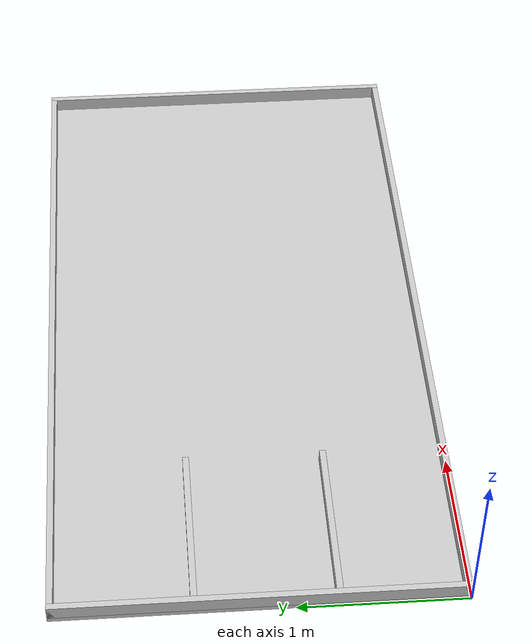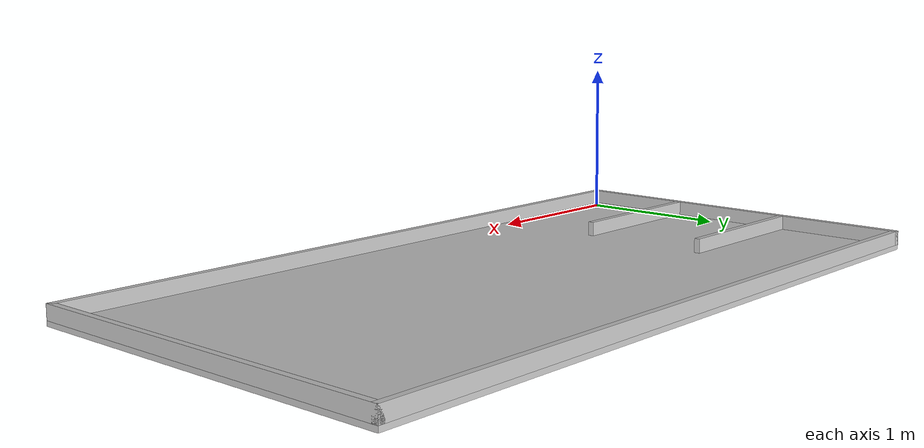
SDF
<sdf version="1.11">
  <model name="f3rc2026_map_v2">
    <link name="base_link">
      <inertial>
        <pose>2.2193193540831881 1.1993190043546511 0.02342373692359704 0 0 0</pose>
        <mass>2962.869459999999</mass>
        <inertia>
          <ixx>1626.1278563950079</ixx>
          <ixy>-3.3924000783126762</ixy>
          <ixz>4.6429727120770679</ixz>
          <iyy>5488.4988004873903</iyy>
          <iyz>0.1030566373008099</iyz>
          <izz>7111.14180991592</izz>
        </inertia>
      </inertial>
      <collision name="base_link_collision">
        <pose>0 0 0 0 0 0</pose>
        <geometry>
          <mesh>
            <scale>0.001 0.001 0.001</scale>
            <uri>meshes/base_link.stl</uri>
          </mesh>
        </geometry>
      </collision>
      <collision name="base_link_fixed_joint_lump__2400_v2_1_collision_1">
        <pose>0 0 0 0 0 0</pose>
        <geometry>
          <mesh>
            <scale>0.001 0.001 0.001</scale>
            <uri>meshes/2400_v2_1.stl</uri>
          </mesh>
        </geometry>
      </collision>
      <collision name="base_link_fixed_joint_lump__2400_v2_2_collision_2">
        <pose>0 0 0 0 0 0</pose>
        <geometry>
          <mesh>
            <scale>0.001 0.001 0.001</scale>
            <uri>meshes/2400_v2_2.stl</uri>
          </mesh>
        </geometry>
      </collision>
      <collision name="base_link_fixed_joint_lump__4500_v1_1_collision_3">
        <pose>0 0 0 0 0 0</pose>
        <geometry>
          <mesh>
            <scale>0.001 0.001 0.001</scale>
            <uri>meshes/4500_v1_1.stl</uri>
          </mesh>
        </geometry>
      </collision>
      <collision name="base_link_fixed_joint_lump__4500_v1_2_collision_4">
        <pose>0 0 0 0 0 0</pose>
        <geometry>
          <mesh>
            <scale>0.001 0.001 0.001</scale>
            <uri>meshes/4500_v1_2.stl</uri>
          </mesh>
        </geometry>
      </collision>
      <collision name="base_link_fixed_joint_lump__1000_v2_1_collision_5">
        <pose>0 0 0 0 0 0</pose>
        <geometry>
          <mesh>
            <scale>0.001 0.001 0.001</scale>
            <uri>meshes/1000_v2_1.stl</uri>
          </mesh>
        </geometry>
      </collision>
      <collision name="base_link_fixed_joint_lump__1000_v2_2_collision_6">
        <pose>0 0 0 0 0 0</pose>
        <geometry>
          <mesh>
            <scale>0.001 0.001 0.001</scale>
            <uri>meshes/1000_v2_2.stl</uri>
          </mesh>
        </geometry>
      </collision>
      <visual name="base_link_visual">
        <pose>0 0 0 0 0 0</pose>
        <geometry>
          <mesh>
            <scale>0.001 0.001 0.001</scale>
            <uri>meshes/base_link.stl</uri>
          </mesh>
        </geometry>
        <material>
          <diffuse>0.784313738 0.784313738 0.784313738 1</diffuse>
          <ambient>0.784313738 0.784313738 0.784313738 1</ambient>
        </material>
      </visual>
      <visual name="base_link_fixed_joint_lump__2400_v2_1_visual_1">
        <pose>0 0 0 0 0 0</pose>
        <geometry>
          <mesh>
            <scale>0.001 0.001 0.001</scale>
            <uri>meshes/2400_v2_1.stl</uri>
          </mesh>
        </geometry>
        <material>
          <diffuse>0.784313738 0.784313738 0.784313738 1</diffuse>
          <ambient>0.784313738 0.784313738 0.784313738 1</ambient>
        </material>
      </visual>
      <visual name="base_link_fixed_joint_lump__2400_v2_2_visual_2">
        <pose>0 0 0 0 0 0</pose>
        <geometry>
          <mesh>
            <scale>0.001 0.001 0.001</scale>
            <uri>meshes/2400_v2_2.stl</uri>
          </mesh>
        </geometry>
        <material>
          <diffuse>0.784313738 0.784313738 0.784313738 1</diffuse>
          <ambient>0.784313738 0.784313738 0.784313738 1</ambient>
        </material>
      </visual>
      <visual name="base_link_fixed_joint_lump__4500_v1_1_visual_3">
        <pose>0 0 0 0 0 0</pose>
        <geometry>
          <mesh>
            <scale>0.001 0.001 0.001</scale>
            <uri>meshes/4500_v1_1.stl</uri>
          </mesh>
        </geometry>
        <material>
          <diffuse>0.784313738 0.784313738 0.784313738 1</diffuse>
          <ambient>0.784313738 0.784313738 0.784313738 1</ambient>
        </material>
      </visual>
      <visual name="base_link_fixed_joint_lump__4500_v1_2_visual_4">
        <pose>0 0 0 0 0 0</pose>
        <geometry>
          <mesh>
            <scale>0.001 0.001 0.001</scale>
            <uri>meshes/4500_v1_2.stl</uri>
          </mesh>
        </geometry>
        <material>
          <diffuse>0.784313738 0.784313738 0.784313738 1</diffuse>
          <ambient>0.784313738 0.784313738 0.784313738 1</ambient>
        </material>
      </visual>
      <visual name="base_link_fixed_joint_lump__1000_v2_1_visual_5">
        <pose>0 0 0 0 0 0</pose>
        <geometry>
          <mesh>
            <scale>0.001 0.001 0.001</scale>
            <uri>meshes/1000_v2_1.stl</uri>
          </mesh>
        </geometry>
        <material>
          <diffuse>0.784313738 0.784313738 0.784313738 1</diffuse>
          <ambient>0.784313738 0.784313738 0.784313738 1</ambient>
        </material>
      </visual>
      <visual name="base_link_fixed_joint_lump__1000_v2_2_visual_6">
        <pose>0 0 0 0 0 0</pose>
        <geometry>
          <mesh>
            <scale>0.001 0.001 0.001</scale>
            <uri>meshes/1000_v2_2.stl</uri>
          </mesh>
        </geometry>
        <material>
          <diffuse>0.784313738 0.784313738 0.784313738 1</diffuse>
          <ambient>0.784313738 0.784313738 0.784313738 1</ambient>
        </material>
      </visual>
    </link>
    <plugin name="gz::sim::systems::PosePublisher" filename="libgz-sim-pose-publisher-system.so">
      <publish_link_pose>true</publish_link_pose>
      <publish_model_pose>true</publish_model_pose>
      <use_pose_vector_msg>true</use_pose_vector_msg>
      <update_frequency>50</update_frequency>
    </plugin>
    <frame name="fixed_joint_1" attached_to="base_link">
      <pose>4.4809999999999999 1.2 0.029999999999999999 0 0 0</pose>
    </frame>
    <frame name="2400_v2_1" attached_to="fixed_joint_1">
      <pose>0 0 0 0 0 0</pose>
    </frame>
    <frame name="fixed_joint_2" attached_to="base_link">
      <pose>0.019 1.2 0.029999999999999999 0 0 0</pose>
    </frame>
    <frame name="2400_v2_2" attached_to="fixed_joint_2">
      <pose>0 0 0 0 0 0</pose>
    </frame>
    <frame name="fixed_joint_3" attached_to="base_link">
      <pose>2.25 0.019 0.029999999999999999 0 0 0</pose>
    </frame>
    <frame name="4500_v1_1" attached_to="fixed_joint_3">
      <pose>0 0 0 0 0 0</pose>
    </frame>
    <frame name="fixed_joint_4" attached_to="base_link">
      <pose>2.25 2.3809999999999998 0.029999999999999999 0 0 0</pose>
    </frame>
    <frame name="4500_v1_2" attached_to="fixed_joint_4">
      <pose>0 0 0 0 0 0</pose>
    </frame>
    <frame name="fixed_joint_5" attached_to="base_link">
      <pose>0.53800000000000003 0.75 0.029999999999999999 0 0 0</pose>
    </frame>
    <frame name="1000_v2_1" attached_to="fixed_joint_5">
      <pose>0 0 0 0 0 0</pose>
    </frame>
    <frame name="fixed_joint_6" attached_to="base_link">
      <pose>0.53800000000000003 1.5740000000000001 0.029999999999999999 0 0 0</pose>
    </frame>
    <frame name="1000_v2_2" attached_to="fixed_joint_6">
      <pose>0 0 0 0 0 0</pose>
    </frame>
  </model>
</sdf>
